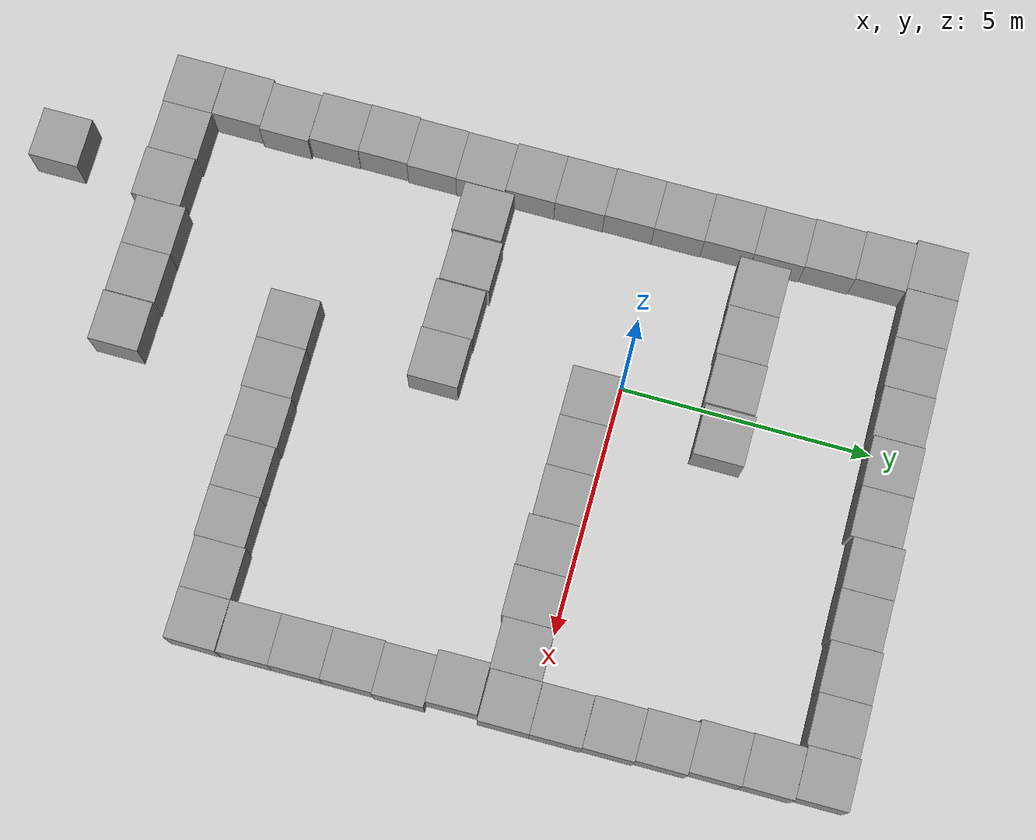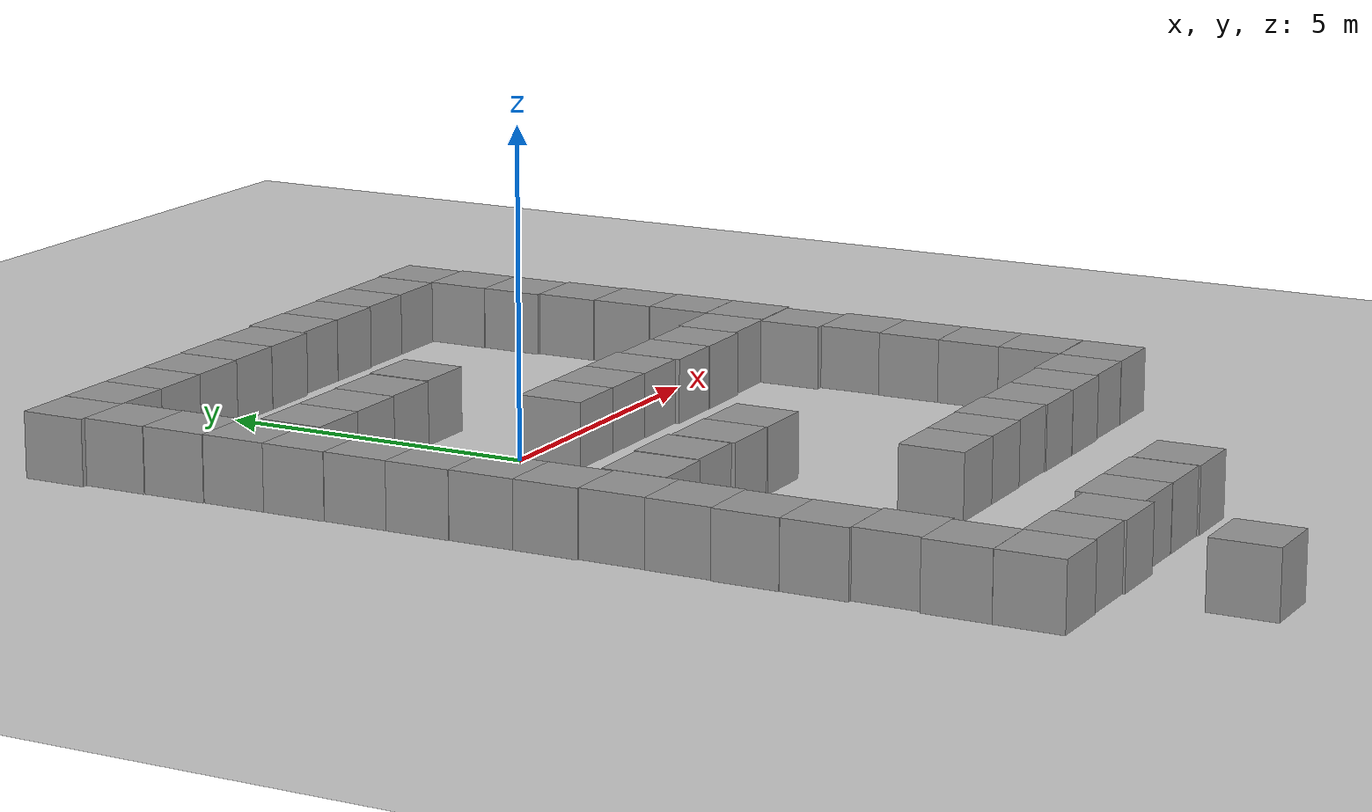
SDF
<sdf version="1.6">
 <world name="default">
  <light name="sun" type="directional">
   <pose>0 0 10 0 -0 0</pose>
   <diffuse>0.8 0.8 0.8 1</diffuse>
   <specular>0.1 0.1 0.1 1</specular>
   <attenuation>
    <range>1000</range>
    <constant>0.9</constant>
    <linear>0.01</linear>
    <quadratic>0.001</quadratic>
   </attenuation>
   <direction>-0.5 0.5 -1</direction>
  </light>
  <model name="ground_plane">
   <static>1</static>
   <link name="link">
    <collision name="collision">
     <geometry><plane><normal>0 0 1</normal><size>100 100</size></plane></geometry>
     <surface><friction><ode><mu>100</mu><mu2>50</mu2></ode></friction></surface>
    </collision>
    <visual name="visual">
     <cast_shadows>0</cast_shadows>
     <geometry><plane><normal>0 0 1</normal><size>100 100</size></plane></geometry>
     <material>
      <script><uri>file://media/materials/scripts/gazebo.material</uri><name>Gazebo/Grey</name></script>
     </material>
    </visual>
   </link>
  </model>
  <gravity>0 0 -9.8</gravity>
  <magnetic_field>6e-06 2.3e-05 -4.2e-05</magnetic_field>
  <atmosphere type="adiabatic"/>
  <physics name="default_physics" default="0" type="ode">
   <max_step_size>0.001</max_step_size>
   <real_time_factor>1</real_time_factor>
   <real_time_update_rate>1000</real_time_update_rate>
  </physics>
  <scene><ambient>0.4 0.4 0.4 1</ambient><background>0.7 0.7 0.7 1</background><shadows>1</shadows></scene>
  <spherical_coordinates>
   <surface_model>EARTH_WGS84</surface_model>
   <latitude_deg>0</latitude_deg>
   <longitude_deg>0</longitude_deg>
   <elevation>0</elevation>
   <heading_deg>0</heading_deg>
  </spherical_coordinates>
  <model name="unit_box_0">
   <pose>-3.4942 -4.69429 0.5 0 -0 0.00068</pose>
   <link name="link">
    <inertial>
     <mass>1</mass>
     <inertia>
      <ixx>0.166667</ixx>
      <ixy>0</ixy>
      <ixz>0</ixz>
      <iyy>0.166667</iyy>
      <iyz>0</iyz>
      <izz>0.166667</izz>
     </inertia>
    </inertial>
    <collision name="collision"><geometry><box><size>1 1 1</size></box></geometry></collision>
    <visual name="visual">
     <geometry><box><size>1 1 1</size></box></geometry>
     <material>
      <script><name>Gazebo/Grey</name><uri>file://media/materials/scripts/gazebo.material</uri></script>
     </material>
    </visual>
   </link>
  </model>
  <model name="unit_box_1">
   <pose>-3.48497 -3.69401 0.5 0 -0 0.001213</pose>
   <link name="link">
    <inertial>
     <mass>1</mass>
     <inertia>
      <ixx>0.166667</ixx>
      <ixy>0</ixy>
      <ixz>0</ixz>
      <iyy>0.166667</iyy>
      <iyz>0</iyz>
      <izz>0.166667</izz>
     </inertia>
    </inertial>
    <collision name="collision"><geometry><box><size>1 1 1</size></box></geometry></collision>
    <visual name="visual">
     <geometry><box><size>1 1 1</size></box></geometry>
     <material>
      <script><name>Gazebo/Grey</name><uri>file://media/materials/scripts/gazebo.material</uri></script>
     </material>
    </visual>
   </link>
  </model>
  <model name="unit_box_2">
   <pose>-3.52109 -2.69398 0.499995 0 -1e-05 0.001374</pose>
   <link name="link">
    <inertial>
     <mass>1</mass>
     <inertia>
      <ixx>0.166667</ixx>
      <ixy>0</ixy>
      <ixz>0</ixz>
      <iyy>0.166667</iyy>
      <iyz>0</iyz>
      <izz>0.166667</izz>
     </inertia>
    </inertial>
    <collision name="collision"><geometry><box><size>1 1 1</size></box></geometry></collision>
    <visual name="visual">
     <geometry><box><size>1 1 1</size></box></geometry>
     <material>
      <script><name>Gazebo/Grey</name><uri>file://media/materials/scripts/gazebo.material</uri></script>
     </material>
    </visual>
   </link>
  </model>
  <model name="unit_box_3">
   <pose>-3.52524 -1.69398 0.5 0 -0 0.001374</pose>
   <link name="link">
    <inertial>
     <mass>1</mass>
     <inertia>
      <ixx>0.166667</ixx>
      <ixy>0</ixy>
      <ixz>0</ixz>
      <iyy>0.166667</iyy>
      <iyz>0</iyz>
      <izz>0.166667</izz>
     </inertia>
    </inertial>
    <collision name="collision"><geometry><box><size>1 1 1</size></box></geometry></collision>
    <visual name="visual">
     <geometry><box><size>1 1 1</size></box></geometry>
     <material>
      <script><name>Gazebo/Grey</name><uri>file://media/materials/scripts/gazebo.material</uri></script>
     </material>
    </visual>
   </link>
  </model>
  <model name="unit_box_4">
   <pose>-3.53807 -0.69397 0.5 0 -0 0.001426</pose>
   <link name="link">
    <inertial>
     <mass>1</mass>
     <inertia>
      <ixx>0.166667</ixx>
      <ixy>0</ixy>
      <ixz>0</ixz>
      <iyy>0.166667</iyy>
      <iyz>0</iyz>
      <izz>0.166667</izz>
     </inertia>
    </inertial>
    <collision name="collision"><geometry><box><size>1 1 1</size></box></geometry></collision>
    <visual name="visual">
     <geometry><box><size>1 1 1</size></box></geometry>
     <material>
      <script><name>Gazebo/Grey</name><uri>file://media/materials/scripts/gazebo.material</uri></script>
     </material>
    </visual>
   </link>
  </model>
  <model name="unit_box_5">
   <pose>-3.53814 0.306065 0.499995 -0 1e-05 0.001493</pose>
   <link name="link">
    <inertial>
     <mass>1</mass>
     <inertia>
      <ixx>0.166667</ixx>
      <ixy>0</ixy>
      <ixz>0</ixz>
      <iyy>0.166667</iyy>
      <iyz>0</iyz>
      <izz>0.166667</izz>
     </inertia>
    </inertial>
    <collision name="collision"><geometry><box><size>1 1 1</size></box></geometry></collision>
    <visual name="visual">
     <geometry><box><size>1 1 1</size></box></geometry>
     <material>
      <script><name>Gazebo/Grey</name><uri>file://media/materials/scripts/gazebo.material</uri></script>
     </material>
    </visual>
   </link>
  </model>
  <model name="unit_box_6">
   <pose>-3.5533 1.30609 0.5 0 -0 0.001584</pose>
   <link name="link">
    <inertial>
     <mass>1</mass>
     <inertia>
      <ixx>0.166667</ixx>
      <ixy>0</ixy>
      <ixz>0</ixz>
      <iyy>0.166667</iyy>
      <iyz>0</iyz>
      <izz>0.166667</izz>
     </inertia>
    </inertial>
    <collision name="collision"><geometry><box><size>1 1 1</size></box></geometry></collision>
    <visual name="visual">
     <geometry><box><size>1 1 1</size></box></geometry>
     <material>
      <script><name>Gazebo/Grey</name><uri>file://media/materials/scripts/gazebo.material</uri></script>
     </material>
    </visual>
   </link>
  </model>
  <model name="unit_box_7">
   <pose>-3.55471 2.3061 0.499995 0 -1e-05 0.001615</pose>
   <link name="link">
    <inertial>
     <mass>1</mass>
     <inertia>
      <ixx>0.166667</ixx>
      <ixy>0</ixy>
      <ixz>0</ixz>
      <iyy>0.166667</iyy>
      <iyz>0</iyz>
      <izz>0.166667</izz>
     </inertia>
    </inertial>
    <collision name="collision"><geometry><box><size>1 1 1</size></box></geometry></collision>
    <visual name="visual">
     <geometry><box><size>1 1 1</size></box></geometry>
     <material>
      <script><name>Gazebo/Grey</name><uri>file://media/materials/scripts/gazebo.material</uri></script>
     </material>
    </visual>
   </link>
  </model>
  <model name="unit_box_8">
   <pose>-3.57288 3.30611 0.5 0 -0 0.001684</pose>
   <link name="link">
    <inertial>
     <mass>1</mass>
     <inertia>
      <ixx>0.166667</ixx>
      <ixy>0</ixy>
      <ixz>0</ixz>
      <iyy>0.166667</iyy>
      <iyz>0</iyz>
      <izz>0.166667</izz>
     </inertia>
    </inertial>
    <collision name="collision"><geometry><box><size>1 1 1</size></box></geometry></collision>
    <visual name="visual">
     <geometry><box><size>1 1 1</size></box></geometry>
     <material>
      <script><name>Gazebo/Grey</name><uri>file://media/materials/scripts/gazebo.material</uri></script>
     </material>
    </visual>
   </link>
  </model>
  <model name="unit_box_9">
   <pose>-3.59329 4.30622 0.499995 0 1e-05 0.001976</pose>
   <link name="link">
    <inertial>
     <mass>1</mass>
     <inertia>
      <ixx>0.166667</ixx>
      <ixy>0</ixy>
      <ixz>0</ixz>
      <iyy>0.166667</iyy>
      <iyz>0</iyz>
      <izz>0.166667</izz>
     </inertia>
    </inertial>
    <collision name="collision"><geometry><box><size>1 1 1</size></box></geometry></collision>
    <visual name="visual">
     <geometry><box><size>1 1 1</size></box></geometry>
     <material>
      <script><name>Gazebo/Grey</name><uri>file://media/materials/scripts/gazebo.material</uri></script>
     </material>
    </visual>
   </link>
  </model>
  <model name="unit_box_10">
   <pose>-3.6821 5.30613 0.5 0 -0 0.002182</pose>
   <link name="link">
    <inertial>
     <mass>1</mass>
     <inertia>
      <ixx>0.166667</ixx>
      <ixy>0</ixy>
      <ixz>0</ixz>
      <iyy>0.166667</iyy>
      <iyz>0</iyz>
      <izz>0.166667</izz>
     </inertia>
    </inertial>
    <collision name="collision"><geometry><box><size>1 1 1</size></box></geometry></collision>
    <visual name="visual">
     <geometry><box><size>1 1 1</size></box></geometry>
     <material>
      <script><name>Gazebo/Grey</name><uri>file://media/materials/scripts/gazebo.material</uri></script>
     </material>
    </visual>
   </link>
  </model>
  <model name="unit_box_11">
   <pose>-2.68005 5.31637 0.499995 0 1e-05 0.004157</pose>
   <link name="link">
    <inertial>
     <mass>1</mass>
     <inertia>
      <ixx>0.166667</ixx>
      <ixy>0</ixy>
      <ixz>0</ixz>
      <iyy>0.166667</iyy>
      <iyz>0</iyz>
      <izz>0.166667</izz>
     </inertia>
    </inertial>
    <collision name="collision"><geometry><box><size>1 1 1</size></box></geometry></collision>
    <visual name="visual">
     <geometry><box><size>1 1 1</size></box></geometry>
     <material>
      <script><name>Gazebo/Grey</name><uri>file://media/materials/scripts/gazebo.material</uri></script>
     </material>
    </visual>
   </link>
  </model>
  <model name="unit_box_12">
   <pose>-1.68004 5.31833 0.499995 0 1e-05 0.004154</pose>
   <link name="link">
    <inertial>
     <mass>1</mass>
     <inertia>
      <ixx>0.166667</ixx>
      <ixy>0</ixy>
      <ixz>0</ixz>
      <iyy>0.166667</iyy>
      <iyz>0</iyz>
      <izz>0.166667</izz>
     </inertia>
    </inertial>
    <collision name="collision"><geometry><box><size>1 1 1</size></box></geometry></collision>
    <visual name="visual">
     <geometry><box><size>1 1 1</size></box></geometry>
     <material>
      <script><name>Gazebo/Grey</name><uri>file://media/materials/scripts/gazebo.material</uri></script>
     </material>
    </visual>
   </link>
  </model>
  <model name="unit_box_13">
   <pose>-0.679694 5.33217 0.499995 1e-05 -0 0.004956</pose>
   <link name="link">
    <inertial>
     <mass>1</mass>
     <inertia>
      <ixx>0.166667</ixx>
      <ixy>0</ixy>
      <ixz>0</ixz>
      <iyy>0.166667</iyy>
      <iyz>0</iyz>
      <izz>0.166667</izz>
     </inertia>
    </inertial>
    <collision name="collision"><geometry><box><size>1 1 1</size></box></geometry></collision>
    <visual name="visual">
     <geometry><box><size>1 1 1</size></box></geometry>
     <material>
      <script><name>Gazebo/Grey</name><uri>file://media/materials/scripts/gazebo.material</uri></script>
     </material>
    </visual>
   </link>
  </model>
  <model name="unit_box_14">
   <pose>0.321032 5.36085 0.499995 1e-05 -0 0.006744</pose>
   <link name="link">
    <inertial>
     <mass>1</mass>
     <inertia>
      <ixx>0.166667</ixx>
      <ixy>0</ixy>
      <ixz>0</ixz>
      <iyy>0.166667</iyy>
      <iyz>0</iyz>
      <izz>0.166667</izz>
     </inertia>
    </inertial>
    <collision name="collision"><geometry><box><size>1 1 1</size></box></geometry></collision>
    <visual name="visual">
     <geometry><box><size>1 1 1</size></box></geometry>
     <material>
      <script><name>Gazebo/Grey</name><uri>file://media/materials/scripts/gazebo.material</uri></script>
     </material>
    </visual>
   </link>
  </model>
  <model name="unit_box_15">
   <pose>1.32136 5.36585 0.5 0 -0 0.007401</pose>
   <link name="link">
    <inertial>
     <mass>1</mass>
     <inertia>
      <ixx>0.166667</ixx>
      <ixy>0</ixy>
      <ixz>0</ixz>
      <iyy>0.166667</iyy>
      <iyz>0</iyz>
      <izz>0.166667</izz>
     </inertia>
    </inertial>
    <collision name="collision"><geometry><box><size>1 1 1</size></box></geometry></collision>
    <visual name="visual">
     <geometry><box><size>1 1 1</size></box></geometry>
     <material>
      <script><name>Gazebo/Grey</name><uri>file://media/materials/scripts/gazebo.material</uri></script>
     </material>
    </visual>
   </link>
  </model>
  <model name="unit_box_16">
   <pose>2.32094 5.44305 0.5 0 -0 0.00769</pose>
   <link name="link">
    <inertial>
     <mass>1</mass>
     <inertia>
      <ixx>0.166667</ixx>
      <ixy>0</ixy>
      <ixz>0</ixz>
      <iyy>0.166667</iyy>
      <iyz>0</iyz>
      <izz>0.166667</izz>
     </inertia>
    </inertial>
    <collision name="collision"><geometry><box><size>1 1 1</size></box></geometry></collision>
    <visual name="visual">
     <geometry><box><size>1 1 1</size></box></geometry>
     <material>
      <script><name>Gazebo/Grey</name><uri>file://media/materials/scripts/gazebo.material</uri></script>
     </material>
    </visual>
   </link>
  </model>
  <model name="unit_box_9_clone">
   <pose>3.32103 5.44568 0.499995 0 1e-05 0.00782</pose>
   <link name="link">
    <inertial>
     <mass>1</mass>
     <inertia>
      <ixx>0.166667</ixx>
      <ixy>0</ixy>
      <ixz>0</ixz>
      <iyy>0.166667</iyy>
      <iyz>0</iyz>
      <izz>0.166667</izz>
     </inertia>
    </inertial>
    <collision name="collision"><geometry><box><size>1 1 1</size></box></geometry></collision>
    <visual name="visual">
     <geometry><box><size>1 1 1</size></box></geometry>
     <material>
      <script><name>Gazebo/Grey</name><uri>file://media/materials/scripts/gazebo.material</uri></script>
     </material>
    </visual>
   </link>
  </model>
  <model name="unit_box_17">
   <pose>4.32085 5.48438 0.499995 -1e-05 0 0.00789</pose>
   <link name="link">
    <inertial>
     <mass>1</mass>
     <inertia>
      <ixx>0.166667</ixx>
      <ixy>0</ixy>
      <ixz>0</ixz>
      <iyy>0.166667</iyy>
      <iyz>0</iyz>
      <izz>0.166667</izz>
     </inertia>
    </inertial>
    <collision name="collision"><geometry><box><size>1 1 1</size></box></geometry></collision>
    <visual name="visual">
     <geometry><box><size>1 1 1</size></box></geometry>
     <material>
      <script><name>Gazebo/Grey</name><uri>file://media/materials/scripts/gazebo.material</uri></script>
     </material>
    </visual>
   </link>
  </model>
  <model name="unit_box_18">
   <pose>6.32205 5.53737 0.499995 -0 -1e-05 0.005182</pose>
   <link name="link">
    <inertial>
     <mass>1</mass>
     <inertia>
      <ixx>0.166667</ixx>
      <ixy>0</ixy>
      <ixz>0</ixz>
      <iyy>0.166667</iyy>
      <iyz>0</iyz>
      <izz>0.166667</izz>
     </inertia>
    </inertial>
    <collision name="collision"><geometry><box><size>1 1 1</size></box></geometry></collision>
    <visual name="visual">
     <geometry><box><size>1 1 1</size></box></geometry>
     <material>
      <script><name>Gazebo/Grey</name><uri>file://media/materials/scripts/gazebo.material</uri></script>
     </material>
    </visual>
   </link>
  </model>
  <model name="unit_box_19">
   <pose>5.32076 5.49908 0.499995 -1e-05 0 0.00789</pose>
   <link name="link">
    <inertial>
     <mass>1</mass>
     <inertia>
      <ixx>0.166667</ixx>
      <ixy>0</ixy>
      <ixz>0</ixz>
      <iyy>0.166667</iyy>
      <iyz>0</iyz>
      <izz>0.166667</izz>
     </inertia>
    </inertial>
    <collision name="collision"><geometry><box><size>1 1 1</size></box></geometry></collision>
    <visual name="visual">
     <geometry><box><size>1 1 1</size></box></geometry>
     <material>
      <script><name>Gazebo/Grey</name><uri>file://media/materials/scripts/gazebo.material</uri></script>
     </material>
    </visual>
   </link>
  </model>
  <model name="unit_box_20">
   <pose>6.37514 4.53709 0.499995 1e-05 -0 0.004129</pose>
   <link name="link">
    <inertial>
     <mass>1</mass>
     <inertia>
      <ixx>0.166667</ixx>
      <ixy>0</ixy>
      <ixz>0</ixz>
      <iyy>0.166667</iyy>
      <iyz>0</iyz>
      <izz>0.166667</izz>
     </inertia>
    </inertial>
    <collision name="collision"><geometry><box><size>1 1 1</size></box></geometry></collision>
    <visual name="visual">
     <geometry><box><size>1 1 1</size></box></geometry>
     <material>
      <script><name>Gazebo/Grey</name><uri>file://media/materials/scripts/gazebo.material</uri></script>
     </material>
    </visual>
   </link>
  </model>
  <model name="unit_box_21">
   <pose>6.39056 3.53708 0.499995 -1e-05 -0 0.004286</pose>
   <link name="link">
    <inertial>
     <mass>1</mass>
     <inertia>
      <ixx>0.166667</ixx>
      <ixy>0</ixy>
      <ixz>0</ixz>
      <iyy>0.166667</iyy>
      <iyz>0</iyz>
      <izz>0.166667</izz>
     </inertia>
    </inertial>
    <collision name="collision"><geometry><box><size>1 1 1</size></box></geometry></collision>
    <visual name="visual">
     <geometry><box><size>1 1 1</size></box></geometry>
     <material>
      <script><name>Gazebo/Grey</name><uri>file://media/materials/scripts/gazebo.material</uri></script>
     </material>
    </visual>
   </link>
  </model>
  <model name="unit_box_22">
   <pose>6.45425 2.53695 0.499995 -1e-05 0 0.005126</pose>
   <link name="link">
    <inertial>
     <mass>1</mass>
     <inertia>
      <ixx>0.166667</ixx>
      <ixy>0</ixy>
      <ixz>0</ixz>
      <iyy>0.166667</iyy>
      <iyz>0</iyz>
      <izz>0.166667</izz>
     </inertia>
    </inertial>
    <collision name="collision"><geometry><box><size>1 1 1</size></box></geometry></collision>
    <visual name="visual">
     <geometry><box><size>1 1 1</size></box></geometry>
     <material>
      <script><name>Gazebo/Grey</name><uri>file://media/materials/scripts/gazebo.material</uri></script>
     </material>
    </visual>
   </link>
  </model>
  <model name="unit_box_23">
   <pose>6.48843 1.53679 0.499995 -1e-05 0 0.005819</pose>
   <link name="link">
    <inertial>
     <mass>1</mass>
     <inertia>
      <ixx>0.166667</ixx>
      <ixy>0</ixy>
      <ixz>0</ixz>
      <iyy>0.166667</iyy>
      <iyz>0</iyz>
      <izz>0.166667</izz>
     </inertia>
    </inertial>
    <collision name="collision"><geometry><box><size>1 1 1</size></box></geometry></collision>
    <visual name="visual">
     <geometry><box><size>1 1 1</size></box></geometry>
     <material>
      <script><name>Gazebo/Grey</name><uri>file://media/materials/scripts/gazebo.material</uri></script>
     </material>
    </visual>
   </link>
  </model>
  <model name="unit_box_24">
   <pose>6.51368 0.535348 0.499995 -1e-05 0 0.009061</pose>
   <link name="link">
    <inertial>
     <mass>1</mass>
     <inertia>
      <ixx>0.166667</ixx>
      <ixy>0</ixy>
      <ixz>0</ixz>
      <iyy>0.166667</iyy>
      <iyz>0</iyz>
      <izz>0.166667</izz>
     </inertia>
    </inertial>
    <collision name="collision"><geometry><box><size>1 1 1</size></box></geometry></collision>
    <visual name="visual">
     <geometry><box><size>1 1 1</size></box></geometry>
     <material>
      <script><name>Gazebo/Grey</name><uri>file://media/materials/scripts/gazebo.material</uri></script>
     </material>
    </visual>
   </link>
  </model>
  <model name="unit_box_25">
   <pose>6.52384 -0.465885 0.499995 1e-05 -0 0.011501</pose>
   <link name="link">
    <inertial>
     <mass>1</mass>
     <inertia>
      <ixx>0.166667</ixx>
      <ixy>0</ixy>
      <ixz>0</ixz>
      <iyy>0.166667</iyy>
      <iyz>0</iyz>
      <izz>0.166667</izz>
     </inertia>
    </inertial>
    <collision name="collision"><geometry><box><size>1 1 1</size></box></geometry></collision>
    <visual name="visual">
     <geometry><box><size>1 1 1</size></box></geometry>
     <material>
      <script><name>Gazebo/Grey</name><uri>file://media/materials/scripts/gazebo.material</uri></script>
     </material>
    </visual>
   </link>
  </model>
  <model name="unit_box_26">
   <pose>6.44302 -1.48446 0.499995 -1e-05 -0 0.014971</pose>
   <link name="link">
    <inertial>
     <mass>1</mass>
     <inertia>
      <ixx>0.166667</ixx>
      <ixy>0</ixy>
      <ixz>0</ixz>
      <iyy>0.166667</iyy>
      <iyz>0</iyz>
      <izz>0.166667</izz>
     </inertia>
    </inertial>
    <collision name="collision"><geometry><box><size>1 1 1</size></box></geometry></collision>
    <visual name="visual">
     <geometry><box><size>1 1 1</size></box></geometry>
     <material>
      <script><name>Gazebo/Grey</name><uri>file://media/materials/scripts/gazebo.material</uri></script>
     </material>
    </visual>
   </link>
  </model>
  <model name="unit_box_27">
   <pose>6.57579 -2.48263 0.499995 0 -1e-05 0.014924</pose>
   <link name="link">
    <inertial>
     <mass>1</mass>
     <inertia>
      <ixx>0.166667</ixx>
      <ixy>0</ixy>
      <ixz>0</ixz>
      <iyy>0.166667</iyy>
      <iyz>0</iyz>
      <izz>0.166667</izz>
     </inertia>
    </inertial>
    <collision name="collision"><geometry><box><size>1 1 1</size></box></geometry></collision>
    <visual name="visual">
     <geometry><box><size>1 1 1</size></box></geometry>
     <material>
      <script><name>Gazebo/Grey</name><uri>file://media/materials/scripts/gazebo.material</uri></script>
     </material>
    </visual>
   </link>
  </model>
  <model name="unit_box_28">
   <pose>6.57069 -3.48285 0.499995 0 1e-05 0.014883</pose>
   <link name="link">
    <inertial>
     <mass>1</mass>
     <inertia>
      <ixx>0.166667</ixx>
      <ixy>0</ixy>
      <ixz>0</ixz>
      <iyy>0.166667</iyy>
      <iyz>0</iyz>
      <izz>0.166667</izz>
     </inertia>
    </inertial>
    <collision name="collision"><geometry><box><size>1 1 1</size></box></geometry></collision>
    <visual name="visual">
     <geometry><box><size>1 1 1</size></box></geometry>
     <material>
      <script><name>Gazebo/Grey</name><uri>file://media/materials/scripts/gazebo.material</uri></script>
     </material>
    </visual>
   </link>
  </model>
  <model name="unit_box_29">
   <pose>6.58361 -4.483 0.499995 -0 1e-05 0.014422</pose>
   <link name="link">
    <inertial>
     <mass>1</mass>
     <inertia>
      <ixx>0.166667</ixx>
      <ixy>0</ixy>
      <ixz>0</ixz>
      <iyy>0.166667</iyy>
      <iyz>0</iyz>
      <izz>0.166667</izz>
     </inertia>
    </inertial>
    <collision name="collision"><geometry><box><size>1 1 1</size></box></geometry></collision>
    <visual name="visual">
     <geometry><box><size>1 1 1</size></box></geometry>
     <material>
      <script><name>Gazebo/Grey</name><uri>file://media/materials/scripts/gazebo.material</uri></script>
     </material>
    </visual>
   </link>
  </model>
  <model name="unit_box_32">
   <pose>-2.47865 -3.49151 0.499995 0 1e-05 0.004554</pose>
   <link name="link">
    <inertial>
     <mass>1</mass>
     <inertia>
      <ixx>0.166667</ixx>
      <ixy>0</ixy>
      <ixz>0</ixz>
      <iyy>0.166667</iyy>
      <iyz>0</iyz>
      <izz>0.166667</izz>
     </inertia>
    </inertial>
    <collision name="collision"><geometry><box><size>1 1 1</size></box></geometry></collision>
    <visual name="visual">
     <geometry><box><size>1 1 1</size></box></geometry>
     <material>
      <script><name>Gazebo/Grey</name><uri>file://media/materials/scripts/gazebo.material</uri></script>
     </material>
    </visual>
   </link>
  </model>
  <model name="unit_box_33">
   <pose>-1.45375 -3.44877 0.499995 0 -1e-05 0</pose>
   <link name="link">
    <inertial>
     <mass>1</mass>
     <inertia>
      <ixx>0.166667</ixx>
      <ixy>0</ixy>
      <ixz>0</ixz>
      <iyy>0.166667</iyy>
      <iyz>0</iyz>
      <izz>0.166667</izz>
     </inertia>
    </inertial>
    <collision name="collision"><geometry><box><size>1 1 1</size></box></geometry></collision>
    <visual name="visual">
     <geometry><box><size>1 1 1</size></box></geometry>
     <material>
      <script><name>Gazebo/Grey</name><uri>file://media/materials/scripts/gazebo.material</uri></script>
     </material>
    </visual>
   </link>
  </model>
  <model name="unit_box_34">
   <pose>-3.52214 -5.69446 0.5 0 -0 0.000371</pose>
   <link name="link">
    <inertial>
     <mass>1</mass>
     <inertia>
      <ixx>0.166667</ixx>
      <ixy>0</ixy>
      <ixz>0</ixz>
      <iyy>0.166667</iyy>
      <iyz>0</iyz>
      <izz>0.166667</izz>
     </inertia>
    </inertial>
    <collision name="collision"><geometry><box><size>1 1 1</size></box></geometry></collision>
    <visual name="visual">
     <geometry><box><size>1 1 1</size></box></geometry>
     <material>
      <script><name>Gazebo/Grey</name><uri>file://media/materials/scripts/gazebo.material</uri></script>
     </material>
    </visual>
   </link>
  </model>
  <model name="unit_box_35">
   <pose>-3.5111 -6.69445 0.499995 0 -1e-05 0.000371</pose>
   <link name="link">
    <inertial>
     <mass>1</mass>
     <inertia>
      <ixx>0.166667</ixx>
      <ixy>0</ixy>
      <ixz>0</ixz>
      <iyy>0.166667</iyy>
      <iyz>0</iyz>
      <izz>0.166667</izz>
     </inertia>
    </inertial>
    <collision name="collision"><geometry><box><size>1 1 1</size></box></geometry></collision>
    <visual name="visual">
     <geometry><box><size>1 1 1</size></box></geometry>
     <material>
      <script><name>Gazebo/Grey</name><uri>file://media/materials/scripts/gazebo.material</uri></script>
     </material>
    </visual>
   </link>
  </model>
  <model name="unit_box_36">
   <pose>6.5997 -5.48296 0.499995 1e-05 0 0.014266</pose>
   <link name="link">
    <inertial>
     <mass>1</mass>
     <inertia>
      <ixx>0.166667</ixx>
      <ixy>0</ixy>
      <ixz>0</ixz>
      <iyy>0.166667</iyy>
      <iyz>0</iyz>
      <izz>0.166667</izz>
     </inertia>
    </inertial>
    <collision name="collision"><geometry><box><size>1 1 1</size></box></geometry></collision>
    <visual name="visual">
     <geometry><box><size>1 1 1</size></box></geometry>
     <material>
      <script><name>Gazebo/Grey</name><uri>file://media/materials/scripts/gazebo.material</uri></script>
     </material>
    </visual>
   </link>
  </model>
  <model name="unit_box_37">
   <pose>6.60748 -6.4954 0.499995 -0 -1e-05 -4.9e-05</pose>
   <link name="link">
    <inertial>
     <mass>1</mass>
     <inertia>
      <ixx>0.166667</ixx>
      <ixy>0</ixy>
      <ixz>0</ixz>
      <iyy>0.166667</iyy>
      <iyz>0</iyz>
      <izz>0.166667</izz>
     </inertia>
    </inertial>
    <collision name="collision"><geometry><box><size>1 1 1</size></box></geometry></collision>
    <visual name="visual">
     <geometry><box><size>1 1 1</size></box></geometry>
     <material>
      <script><name>Gazebo/Grey</name><uri>file://media/materials/scripts/gazebo.material</uri></script>
     </material>
    </visual>
   </link>
  </model>
  <model name="unit_box_30_0">
   <pose>-2.43912 2.06549 0.499995 -0 1e-05 2e-05</pose>
   <link name="link">
    <inertial>
     <mass>1</mass>
     <inertia>
      <ixx>0.166667</ixx>
      <ixy>0</ixy>
      <ixz>0</ixz>
      <iyy>0.166667</iyy>
      <iyz>0</iyz>
      <izz>0.166667</izz>
     </inertia>
    </inertial>
    <collision name="collision"><geometry><box><size>1 1 1</size></box></geometry></collision>
    <visual name="visual">
     <geometry><box><size>1 1 1</size></box></geometry>
     <material>
      <script><name>Gazebo/Grey</name><uri>file://media/materials/scripts/gazebo.material</uri></script>
     </material>
    </visual>
   </link>
  </model>
  <model name="unit_box_30_1">
   <pose>-1.43911 2.07233 0.499995 0 -1e-05 2.1e-05</pose>
   <link name="link">
    <inertial>
     <mass>1</mass>
     <inertia>
      <ixx>0.166667</ixx>
      <ixy>0</ixy>
      <ixz>0</ixz>
      <iyy>0.166667</iyy>
      <iyz>0</iyz>
      <izz>0.166667</izz>
     </inertia>
    </inertial>
    <collision name="collision"><geometry><box><size>1 1 1</size></box></geometry></collision>
    <visual name="visual">
     <geometry><box><size>1 1 1</size></box></geometry>
     <material>
      <script><name>Gazebo/Grey</name><uri>file://media/materials/scripts/gazebo.material</uri></script>
     </material>
    </visual>
   </link>
  </model>
  <model name="unit_box_30_2">
   <pose>0.519681 -0.497016 0.499995 0 -1e-05 0.008032</pose>
   <link name="link">
    <inertial>
     <mass>1</mass>
     <inertia>
      <ixx>0.166667</ixx>
      <ixy>0</ixy>
      <ixz>0</ixz>
      <iyy>0.166667</iyy>
      <iyz>0</iyz>
      <izz>0.166667</izz>
     </inertia>
    </inertial>
    <collision name="collision"><geometry><box><size>1 1 1</size></box></geometry></collision>
    <visual name="visual">
     <geometry><box><size>1 1 1</size></box></geometry>
     <material>
      <script><name>Gazebo/Grey</name><uri>file://media/materials/scripts/gazebo.material</uri></script>
     </material>
    </visual>
   </link>
  </model>
  <model name="unit_box_30_3">
   <pose>1.51978 -0.495441 0.499995 0 1e-05 0.007909</pose>
   <link name="link">
    <inertial>
     <mass>1</mass>
     <inertia>
      <ixx>0.166667</ixx>
      <ixy>0</ixy>
      <ixz>0</ixz>
      <iyy>0.166667</iyy>
      <iyz>0</iyz>
      <izz>0.166667</izz>
     </inertia>
    </inertial>
    <collision name="collision"><geometry><box><size>1 1 1</size></box></geometry></collision>
    <visual name="visual">
     <geometry><box><size>1 1 1</size></box></geometry>
     <material>
      <script><name>Gazebo/Grey</name><uri>file://media/materials/scripts/gazebo.material</uri></script>
     </material>
    </visual>
   </link>
  </model>
  <model name="unit_box_30_4">
   <pose>2.51985 -0.494544 0.499995 0 -1e-05 0.007804</pose>
   <link name="link">
    <inertial>
     <mass>1</mass>
     <inertia>
      <ixx>0.166667</ixx>
      <ixy>0</ixy>
      <ixz>0</ixz>
      <iyy>0.166667</iyy>
      <iyz>0</iyz>
      <izz>0.166667</izz>
     </inertia>
    </inertial>
    <collision name="collision"><geometry><box><size>1 1 1</size></box></geometry></collision>
    <visual name="visual">
     <geometry><box><size>1 1 1</size></box></geometry>
     <material>
      <script><name>Gazebo/Grey</name><uri>file://media/materials/scripts/gazebo.material</uri></script>
     </material>
    </visual>
   </link>
  </model>
  <model name="unit_box_30_5">
   <pose>3.52184 -0.551106 0.499995 -0 1e-05 0.010663</pose>
   <link name="link">
    <inertial>
     <mass>1</mass>
     <inertia>
      <ixx>0.166667</ixx>
      <ixy>0</ixy>
      <ixz>0</ixz>
      <iyy>0.166667</iyy>
      <iyz>0</iyz>
      <izz>0.166667</izz>
     </inertia>
    </inertial>
    <collision name="collision"><geometry><box><size>1 1 1</size></box></geometry></collision>
    <visual name="visual">
     <geometry><box><size>1 1 1</size></box></geometry>
     <material>
      <script><name>Gazebo/Grey</name><uri>file://media/materials/scripts/gazebo.material</uri></script>
     </material>
    </visual>
   </link>
  </model>
  <model name="unit_box_30_6">
   <pose>4.52348 -0.553663 0.499995 -0 1e-05 0.013551</pose>
   <link name="link">
    <inertial>
     <mass>1</mass>
     <inertia>
      <ixx>0.166667</ixx>
      <ixy>0</ixy>
      <ixz>0</ixz>
      <iyy>0.166667</iyy>
      <iyz>0</iyz>
      <izz>0.166667</izz>
     </inertia>
    </inertial>
    <collision name="collision"><geometry><box><size>1 1 1</size></box></geometry></collision>
    <visual name="visual">
     <geometry><box><size>1 1 1</size></box></geometry>
     <material>
      <script><name>Gazebo/Grey</name><uri>file://media/materials/scripts/gazebo.material</uri></script>
     </material>
    </visual>
   </link>
  </model>
  <model name="unit_box_30_7">
   <pose>5.52318 -0.496993 0.499995 1e-05 -0 0.012861</pose>
   <link name="link">
    <inertial>
     <mass>1</mass>
     <inertia>
      <ixx>0.166667</ixx>
      <ixy>0</ixy>
      <ixz>0</ixz>
      <iyy>0.166667</iyy>
      <iyz>0</iyz>
      <izz>0.166667</izz>
     </inertia>
    </inertial>
    <collision name="collision"><geometry><box><size>1 1 1</size></box></geometry></collision>
    <visual name="visual">
     <geometry><box><size>1 1 1</size></box></geometry>
     <material>
      <script><name>Gazebo/Grey</name><uri>file://media/materials/scripts/gazebo.material</uri></script>
     </material>
    </visual>
   </link>
  </model>
  <model name="unit_box_30_8">
   <pose>-0.438608 2.09416 0.499995 -1e-05 0 0</pose>
   <link name="link">
    <inertial>
     <mass>1</mass>
     <inertia>
      <ixx>0.166667</ixx>
      <ixy>0</ixy>
      <ixz>0</ixz>
      <iyy>0.166667</iyy>
      <iyz>0</iyz>
      <izz>0.166667</izz>
     </inertia>
    </inertial>
    <collision name="collision"><geometry><box><size>1 1 1</size></box></geometry></collision>
    <visual name="visual">
     <geometry><box><size>1 1 1</size></box></geometry>
     <material>
      <script><name>Gazebo/Grey</name><uri>file://media/materials/scripts/gazebo.material</uri></script>
     </material>
    </visual>
   </link>
  </model>
  <model name="unit_box_30_9">
   <pose>0.586735 2.12825 0.499995 0 -1e-05 0</pose>
   <link name="link">
    <inertial>
     <mass>1</mass>
     <inertia>
      <ixx>0.166667</ixx>
      <ixy>0</ixy>
      <ixz>0</ixz>
      <iyy>0.166667</iyy>
      <iyz>0</iyz>
      <izz>0.166667</izz>
     </inertia>
    </inertial>
    <collision name="collision"><geometry><box><size>1 1 1</size></box></geometry></collision>
    <visual name="visual">
     <geometry><box><size>1 1 1</size></box></geometry>
     <material>
      <script><name>Gazebo/Grey</name><uri>file://media/materials/scripts/gazebo.material</uri></script>
     </material>
    </visual>
   </link>
  </model>
  <model name="unit_box_30_10">
   <pose>-0.437084 -3.4979 0.499995 -1e-05 -0 -5.7e-05</pose>
   <link name="link">
    <inertial>
     <mass>1</mass>
     <inertia>
      <ixx>0.166667</ixx>
      <ixy>0</ixy>
      <ixz>0</ixz>
      <iyy>0.166667</iyy>
      <iyz>0</iyz>
      <izz>0.166667</izz>
     </inertia>
    </inertial>
    <collision name="collision"><geometry><box><size>1 1 1</size></box></geometry></collision>
    <visual name="visual">
     <geometry><box><size>1 1 1</size></box></geometry>
     <material>
      <script><name>Gazebo/Grey</name><uri>file://media/materials/scripts/gazebo.material</uri></script>
     </material>
    </visual>
   </link>
  </model>
  <model name="unit_box_30_11">
   <pose>0.562917 -3.51471 0.499995 -1e-05 -0 -5.8e-05</pose>
   <link name="link">
    <inertial>
     <mass>1</mass>
     <inertia>
      <ixx>0.166667</ixx>
      <ixy>0</ixy>
      <ixz>0</ixz>
      <iyy>0.166667</iyy>
      <iyz>0</iyz>
      <izz>0.166667</izz>
     </inertia>
    </inertial>
    <collision name="collision"><geometry><box><size>1 1 1</size></box></geometry></collision>
    <visual name="visual">
     <geometry><box><size>1 1 1</size></box></geometry>
     <material>
      <script><name>Gazebo/Grey</name><uri>file://media/materials/scripts/gazebo.material</uri></script>
     </material>
    </visual>
   </link>
  </model>
  <model name="unit_box_30_12">
   <pose>0.607226 -6.51742 0.499995 -0 1e-05 0.00019</pose>
   <link name="link">
    <inertial>
     <mass>1</mass>
     <inertia>
      <ixx>0.166667</ixx>
      <ixy>0</ixy>
      <ixz>0</ixz>
      <iyy>0.166667</iyy>
      <iyz>0</iyz>
      <izz>0.166667</izz>
     </inertia>
    </inertial>
    <collision name="collision"><geometry><box><size>1 1 1</size></box></geometry></collision>
    <visual name="visual">
     <geometry><box><size>1 1 1</size></box></geometry>
     <material>
      <script><name>Gazebo/Grey</name><uri>file://media/materials/scripts/gazebo.material</uri></script>
     </material>
    </visual>
   </link>
  </model>
  <model name="unit_box_30_13">
   <pose>1.60722 -6.51427 0.499995 0 -1e-05 0.000192</pose>
   <link name="link">
    <inertial>
     <mass>1</mass>
     <inertia>
      <ixx>0.166667</ixx>
      <ixy>0</ixy>
      <ixz>0</ixz>
      <iyy>0.166667</iyy>
      <iyz>0</iyz>
      <izz>0.166667</izz>
     </inertia>
    </inertial>
    <collision name="collision"><geometry><box><size>1 1 1</size></box></geometry></collision>
    <visual name="visual">
     <geometry><box><size>1 1 1</size></box></geometry>
     <material>
      <script><name>Gazebo/Grey</name><uri>file://media/materials/scripts/gazebo.material</uri></script>
     </material>
    </visual>
   </link>
  </model>
  <model name="unit_box_30_14">
   <pose>2.60729 -6.49529 0.499995 0 -1e-05 0.000248</pose>
   <link name="link">
    <inertial>
     <mass>1</mass>
     <inertia>
      <ixx>0.166667</ixx>
      <ixy>0</ixy>
      <ixz>0</ixz>
      <iyy>0.166667</iyy>
      <iyz>0</iyz>
      <izz>0.166667</izz>
     </inertia>
    </inertial>
    <collision name="collision"><geometry><box><size>1 1 1</size></box></geometry></collision>
    <visual name="visual">
     <geometry><box><size>1 1 1</size></box></geometry>
     <material>
      <script><name>Gazebo/Grey</name><uri>file://media/materials/scripts/gazebo.material</uri></script>
     </material>
    </visual>
   </link>
  </model>
  <model name="unit_box_30_15">
   <pose>3.60737 -6.51673 0.499995 -0 -1e-05 0.000186</pose>
   <link name="link">
    <inertial>
     <mass>1</mass>
     <inertia>
      <ixx>0.166667</ixx>
      <ixy>0</ixy>
      <ixz>0</ixz>
      <iyy>0.166667</iyy>
      <iyz>0</iyz>
      <izz>0.166667</izz>
     </inertia>
    </inertial>
    <collision name="collision"><geometry><box><size>1 1 1</size></box></geometry></collision>
    <visual name="visual">
     <geometry><box><size>1 1 1</size></box></geometry>
     <material>
      <script><name>Gazebo/Grey</name><uri>file://media/materials/scripts/gazebo.material</uri></script>
     </material>
    </visual>
   </link>
  </model>
  <model name="unit_box_30_17">
   <pose>4.60738 -6.52024 0.5 0 -0 0.000169</pose>
   <link name="link">
    <inertial>
     <mass>1</mass>
     <inertia>
      <ixx>0.166667</ixx>
      <ixy>0</ixy>
      <ixz>0</ixz>
      <iyy>0.166667</iyy>
      <iyz>0</iyz>
      <izz>0.166667</izz>
     </inertia>
    </inertial>
    <collision name="collision"><geometry><box><size>1 1 1</size></box></geometry></collision>
    <visual name="visual">
     <geometry><box><size>1 1 1</size></box></geometry>
     <material>
      <script><name>Gazebo/Grey</name><uri>file://media/materials/scripts/gazebo.material</uri></script>
     </material>
    </visual>
   </link>
  </model>
  <model name="unit_box_30_18">
   <pose>5.6074 -6.49085 0.499995 1e-05 0 0.000121</pose>
   <link name="link">
    <inertial>
     <mass>1</mass>
     <inertia>
      <ixx>0.166667</ixx>
      <ixy>0</ixy>
      <ixz>0</ixz>
      <iyy>0.166667</iyy>
      <iyz>0</iyz>
      <izz>0.166667</izz>
     </inertia>
    </inertial>
    <collision name="collision"><geometry><box><size>1 1 1</size></box></geometry></collision>
    <visual name="visual">
     <geometry><box><size>1 1 1</size></box></geometry>
     <material>
      <script><name>Gazebo/Grey</name><uri>file://media/materials/scripts/gazebo.material</uri></script>
     </material>
    </visual>
   </link>
  </model>
  <model name="unit_box_30_19">
   <pose>-3.44737 -7.69503 0.5 0 0 -0.000819</pose>
   <link name="link">
    <inertial>
     <mass>1</mass>
     <inertia>
      <ixx>0.166667</ixx>
      <ixy>0</ixy>
      <ixz>0</ixz>
      <iyy>0.166667</iyy>
      <iyz>0</iyz>
      <izz>0.166667</izz>
     </inertia>
    </inertial>
    <collision name="collision"><geometry><box><size>1 1 1</size></box></geometry></collision>
    <visual name="visual">
     <geometry><box><size>1 1 1</size></box></geometry>
     <material>
      <script><name>Gazebo/Grey</name><uri>file://media/materials/scripts/gazebo.material</uri></script>
     </material>
    </visual>
   </link>
  </model>
  <model name="unit_box_30_20">
   <pose>-3.50403 -8.69513 0.499995 0 1e-05 -0.001137</pose>
   <link name="link">
    <inertial>
     <mass>1</mass>
     <inertia>
      <ixx>0.166667</ixx>
      <ixy>0</ixy>
      <ixz>0</ixz>
      <iyy>0.166667</iyy>
      <iyz>0</iyz>
      <izz>0.166667</izz>
     </inertia>
    </inertial>
    <collision name="collision"><geometry><box><size>1 1 1</size></box></geometry></collision>
    <visual name="visual">
     <geometry><box><size>1 1 1</size></box></geometry>
     <material>
      <script><name>Gazebo/Grey</name><uri>file://media/materials/scripts/gazebo.material</uri></script>
     </material>
    </visual>
   </link>
  </model>
  <model name="unit_box_30">
   <pose>-3.50531 -9.69799 0.499995 -1e-05 -0 -0.000201</pose>
   <link name="link">
    <inertial>
     <mass>1</mass>
     <inertia>
      <ixx>0.166667</ixx>
      <ixy>0</ixy>
      <ixz>0</ixz>
      <iyy>0.166667</iyy>
      <iyz>0</iyz>
      <izz>0.166667</izz>
     </inertia>
    </inertial>
    <collision name="collision"><geometry><box><size>1 1 1</size></box></geometry></collision>
    <visual name="visual">
     <geometry><box><size>1 1 1</size></box></geometry>
     <material>
      <script><name>Gazebo/Grey</name><uri>file://media/materials/scripts/gazebo.material</uri></script>
     </material>
    </visual>
   </link>
  </model>
  <model name="unit_box_31">
   <pose>-2.50497 -9.68225 0.5 0 0 -0.000787</pose>
   <link name="link">
    <inertial>
     <mass>1</mass>
     <inertia>
      <ixx>0.166667</ixx>
      <ixy>0</ixy>
      <ixz>0</ixz>
      <iyy>0.166667</iyy>
      <iyz>0</iyz>
      <izz>0.166667</izz>
     </inertia>
    </inertial>
    <collision name="collision"><geometry><box><size>1 1 1</size></box></geometry></collision>
    <visual name="visual">
     <geometry><box><size>1 1 1</size></box></geometry>
     <material>
      <script><name>Gazebo/Grey</name><uri>file://media/materials/scripts/gazebo.material</uri></script>
     </material>
    </visual>
   </link>
  </model>
  <model name="unit_box_38">
   <pose>-1.50492 -9.71567 0.499995 0 -1e-05 -0.00072</pose>
   <link name="link">
    <inertial>
     <mass>1</mass>
     <inertia>
      <ixx>0.166667</ixx>
      <ixy>0</ixy>
      <ixz>0</ixz>
      <iyy>0.166667</iyy>
      <iyz>0</iyz>
      <izz>0.166667</izz>
     </inertia>
    </inertial>
    <collision name="collision"><geometry><box><size>1 1 1</size></box></geometry></collision>
    <visual name="visual">
     <geometry><box><size>1 1 1</size></box></geometry>
     <material>
      <script><name>Gazebo/Grey</name><uri>file://media/materials/scripts/gazebo.material</uri></script>
     </material>
    </visual>
   </link>
  </model>
  <model name="unit_box_39">
   <pose>-0.504817 -9.59486 0.499995 0 1e-05 -0.000726</pose>
   <link name="link">
    <inertial>
     <mass>1</mass>
     <inertia>
      <ixx>0.166667</ixx>
      <ixy>0</ixy>
      <ixz>0</ixz>
      <iyy>0.166667</iyy>
      <iyz>0</iyz>
      <izz>0.166667</izz>
     </inertia>
    </inertial>
    <collision name="collision"><geometry><box><size>1 1 1</size></box></geometry></collision>
    <visual name="visual">
     <geometry><box><size>1 1 1</size></box></geometry>
     <material>
      <script><name>Gazebo/Grey</name><uri>file://media/materials/scripts/gazebo.material</uri></script>
     </material>
    </visual>
   </link>
  </model>
  <model name="unit_box_40">
   <pose>0.495256 -9.60118 0.499995 1e-05 0 -0.00078</pose>
   <link name="link">
    <inertial>
     <mass>1</mass>
     <inertia>
      <ixx>0.166667</ixx>
      <ixy>0</ixy>
      <ixz>0</ixz>
      <iyy>0.166667</iyy>
      <iyz>0</iyz>
      <izz>0.166667</izz>
     </inertia>
    </inertial>
    <collision name="collision"><geometry><box><size>1 1 1</size></box></geometry></collision>
    <visual name="visual">
     <geometry><box><size>1 1 1</size></box></geometry>
     <material>
      <script><name>Gazebo/Grey</name><uri>file://media/materials/scripts/gazebo.material</uri></script>
     </material>
    </visual>
   </link>
  </model>
  <model name="unit_box_41">
   <pose>1.50407 -9.62769 0.499995 -1e-05 0 0</pose>
   <link name="link">
    <inertial>
     <mass>1</mass>
     <inertia>
      <ixx>0.166667</ixx>
      <ixy>0</ixy>
      <ixz>0</ixz>
      <iyy>0.166667</iyy>
      <iyz>0</iyz>
      <izz>0.166667</izz>
     </inertia>
    </inertial>
    <collision name="collision"><geometry><box><size>1 1 1</size></box></geometry></collision>
    <visual name="visual">
     <geometry><box><size>1 1 1</size></box></geometry>
     <material>
      <script><name>Gazebo/Grey</name><uri>file://media/materials/scripts/gazebo.material</uri></script>
     </material>
    </visual>
   </link>
  </model>
  <model name="unit_box_42">
   <pose>-1.73741 -11.9003 0.5 0 -0 0</pose>
   <link name="link">
    <inertial>
     <mass>1</mass>
     <inertia>
      <ixx>0.166667</ixx>
      <ixy>0</ixy>
      <ixz>0</ixz>
      <iyy>0.166667</iyy>
      <iyz>0</iyz>
      <izz>0.166667</izz>
     </inertia>
    </inertial>
    <collision name="collision"><geometry><box><size>1 1 1</size></box></geometry></collision>
    <visual name="visual">
     <geometry><box><size>1 1 1</size></box></geometry>
     <material>
      <script><name>Gazebo/Grey</name><uri>file://media/materials/scripts/gazebo.material</uri></script>
     </material>
    </visual>
   </link>
  </model>
 </world>
</sdf>
